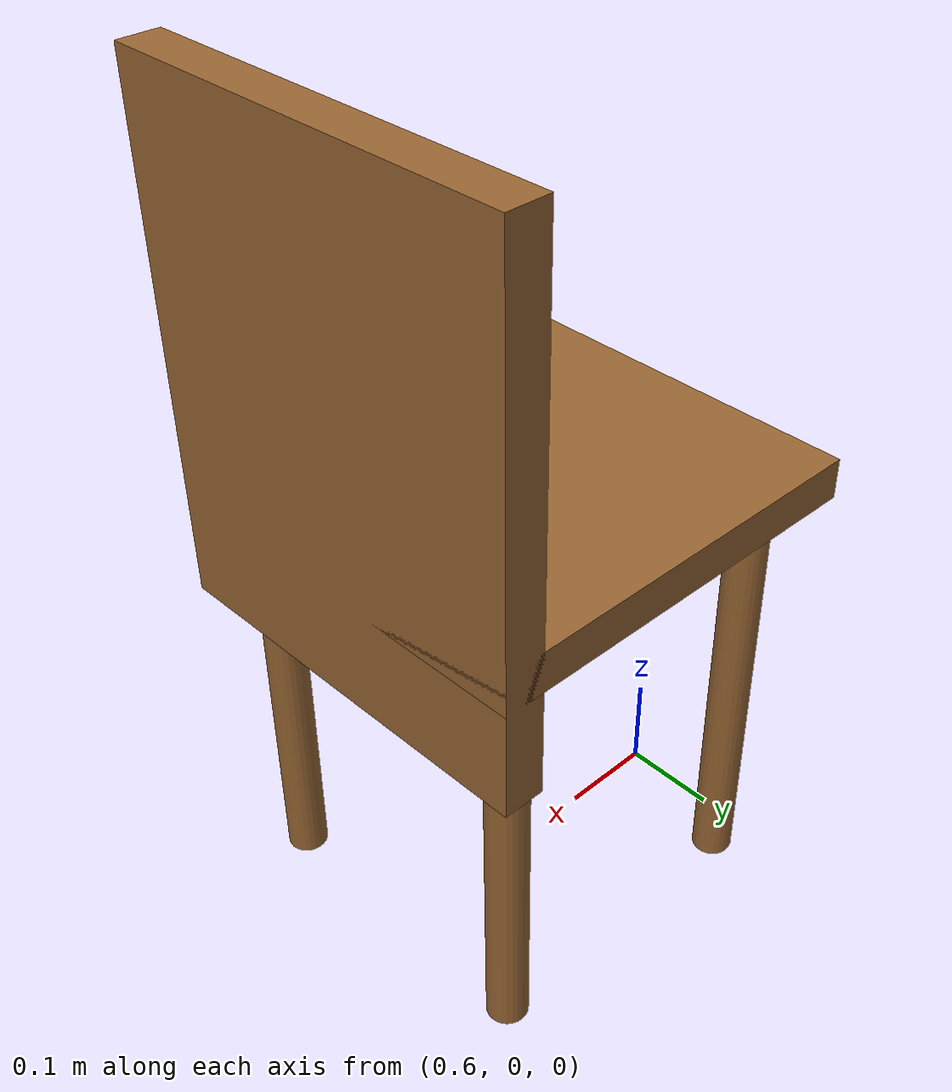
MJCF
<mujoco model="chair">

    <!-- 椅子材质定义 -->
    <asset>
        <material name="chair_material" rgba="0.6 0.4 0.2 1" specular="0.3" shininess="0.1"/>
    </asset>

    <!-- 椅子物理属性默认设置 -->
    <default>
        <default class="chair_geom">
            <geom material="chair_material"
                   contype="2" conaffinity="3"
                   friction="0.7 0.005 0.0001"
                   condim="6"
                   solimp="0.9 0.95"
                   solref="0.0005 1"/>
        </default>
    </default>

    <worldbody>
        <!-- 椅子主体 - 放置在机器人前方，让机器人能撞到它 -->
        <body name="chair" pos="0.8 0 0.475">
            <!-- 椅子座面 -->
            <geom name="chair_seat" type="box" size="0.2 0.20 0.02" pos="0 0 0" mass="5" class="chair_geom"/>

            <!-- 椅子靠背 -->
            <geom name="chair_back" type="box" size="0.02 0.20 0.25" pos="0.18 0 0.125" mass="3" class="chair_geom"/>

            <!-- 椅子腿 -->
            <geom name="chair_leg_front_left" type="cylinder" size="0.02 0.23" pos="0.15 0.15 -0.23" mass="2" class="chair_geom"/>
            <geom name="chair_leg_front_right" type="cylinder" size="0.02 0.23" pos="0.15 -0.15 -0.23" mass="2" class="chair_geom"/>
            <geom name="chair_leg_back_left" type="cylinder" size="0.02 0.23" pos="-0.15 0.15 -0.23" mass="2" class="chair_geom"/>
            <geom name="chair_leg_back_right" type="cylinder" size="0.02 0.23" pos="-0.15 -0.15 -0.23" mass="2" class="chair_geom"/>
        </body>
    </worldbody>

</mujoco>
